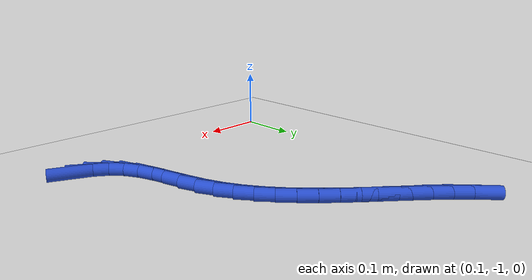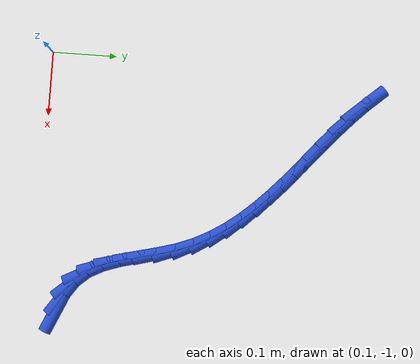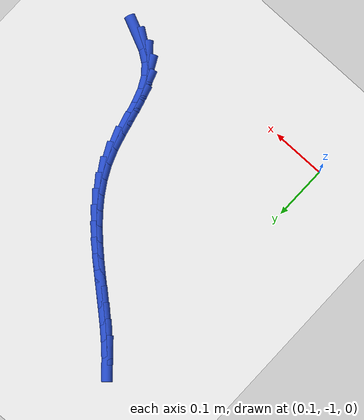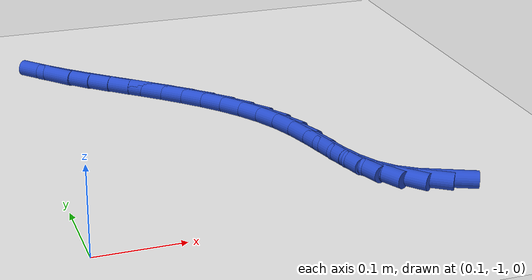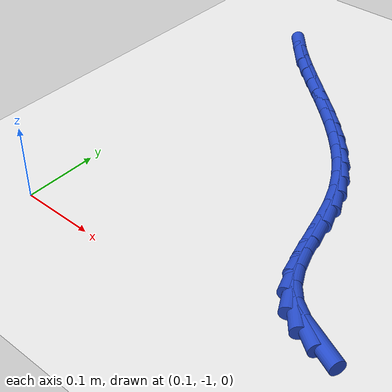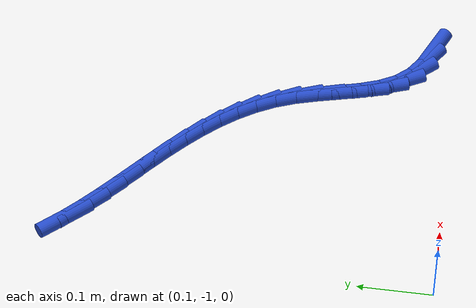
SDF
<sdf version="1.6">
 <world name="default">
  <model name="ground_plane">
   <static>1</static>
   <link name="link">
    <collision name="collision">
     <geometry><plane><normal>0 0 1</normal><size>100 100</size></plane></geometry>
     <surface><friction><ode><mu>100</mu><mu2>50</mu2></ode></friction></surface>
    </collision>
    <visual name="visual">
     <cast_shadows>0</cast_shadows>
     <geometry><plane><normal>0 0 1</normal><size>100 100</size></plane></geometry>
     <material>
      <script><uri>file://media/materials/scripts/gazebo.material</uri><name>Gazebo/WhiteGlow</name></script>
     </material>
    </visual>
   </link>
  </model>
  <model name="line">
   <link name="link_220">
    <pose>0.49903207739644273 -0.9618420998697418 0.01 0 1.57 -0.417349003114497</pose>
    <collision name="collision">
     <geometry><cylinder><radius>0.01</radius><length>0.08</length></cylinder></geometry>
    </collision>
    <visual name="visual">
     <material>
      <script><name>Gazebo/Blue</name><uri>file://media/materials/scripts/gazebo.material</uri></script>
     </material>
     <geometry><cylinder><radius>0.01</radius><length>0.08</length></cylinder></geometry>
    </visual>
   </link>
   <link name="link_221">
    <pose>0.47526597447201724 -0.9513042901302085 0.01 0 1.57 -0.6047112266988052</pose>
    <collision name="collision">
     <geometry><cylinder><radius>0.01</radius><length>0.08</length></cylinder></geometry>
    </collision>
    <visual name="visual">
     <material>
      <script><name>Gazebo/Blue</name><uri>file://media/materials/scripts/gazebo.material</uri></script>
     </material>
     <geometry><cylinder><radius>0.01</radius><length>0.08</length></cylinder></geometry>
    </visual>
   </link>
   <link name="link_222">
    <pose>0.4549799897783672 -0.9372851429496275 0.01 0 1.57 -0.8515704493078079</pose>
    <collision name="collision">
     <geometry><cylinder><radius>0.01</radius><length>0.08</length></cylinder></geometry>
    </collision>
    <visual name="visual">
     <material>
      <script><name>Gazebo/Blue</name><uri>file://media/materials/scripts/gazebo.material</uri></script>
     </material>
     <geometry><cylinder><radius>0.01</radius><length>0.08</length></cylinder></geometry>
    </visual>
   </link>
   <link name="link_223">
    <pose>0.4388586470993198 -0.9188754625256302 0.01 0 1.57 -1.0882365063068438</pose>
    <collision name="collision">
     <geometry><cylinder><radius>0.01</radius><length>0.08</length></cylinder></geometry>
    </collision>
    <visual name="visual">
     <material>
      <script><name>Gazebo/Blue</name><uri>file://media/materials/scripts/gazebo.material</uri></script>
     </material>
     <geometry><cylinder><radius>0.01</radius><length>0.08</length></cylinder></geometry>
    </visual>
   </link>
   <link name="link_224">
    <pose>0.42685317289384395 -0.8959585149349806 0.01 0 1.57 -1.2375458166080213</pose>
    <collision name="collision">
     <geometry><cylinder><radius>0.01</radius><length>0.08</length></cylinder></geometry>
    </collision>
    <visual name="visual">
     <material>
      <script><name>Gazebo/Blue</name><uri>file://media/materials/scripts/gazebo.material</uri></script>
     </material>
     <geometry><cylinder><radius>0.01</radius><length>0.08</length></cylinder></geometry>
    </visual>
   </link>
   <link name="link_225">
    <pose>0.41775386713960655 -0.8696721596502214 0.01 0 1.57 -1.3124815007485768</pose>
    <collision name="collision">
     <geometry><cylinder><radius>0.01</radius><length>0.08</length></cylinder></geometry>
    </collision>
    <visual name="visual">
     <material>
      <script><name>Gazebo/Blue</name><uri>file://media/materials/scripts/gazebo.material</uri></script>
     </material>
     <geometry><cylinder><radius>0.01</radius><length>0.08</length></cylinder></geometry>
    </visual>
   </link>
   <link name="link_226">
    <pose>0.41024826814981546 -0.8412653089173873 0.01 0 1.57 -1.3288820270884938</pose>
    <collision name="collision">
     <geometry><cylinder><radius>0.01</radius><length>0.08</length></cylinder></geometry>
    </collision>
    <visual name="visual">
     <material>
      <script><name>Gazebo/Blue</name><uri>file://media/materials/scripts/gazebo.material</uri></script>
     </material>
     <geometry><cylinder><radius>0.01</radius><length>0.08</length></cylinder></geometry>
    </visual>
   </link>
   <link name="link_227">
    <pose>0.4030239142376789 -0.8119868749825135 0.01 0 1.57 -1.292557065380275</pose>
    <collision name="collision">
     <geometry><cylinder><radius>0.01</radius><length>0.08</length></cylinder></geometry>
    </collision>
    <visual name="visual">
     <material>
      <script><name>Gazebo/Blue</name><uri>file://media/materials/scripts/gazebo.material</uri></script>
     </material>
     <geometry><cylinder><radius>0.01</radius><length>0.08</length></cylinder></geometry>
    </visual>
   </link>
   <link name="link_228">
    <pose>0.39476834371640457 -0.783085770091635 0.01 0 1.57 -1.2037793721290597</pose>
    <collision name="collision">
     <geometry><cylinder><radius>0.01</radius><length>0.08</length></cylinder></geometry>
    </collision>
    <visual name="visual">
     <material>
      <script><name>Gazebo/Blue</name><uri>file://media/materials/scripts/gazebo.material</uri></script>
     </material>
     <geometry><cylinder><radius>0.01</radius><length>0.08</length></cylinder></geometry>
    </visual>
   </link>
   <link name="link_229">
    <pose>0.38425348857347574 -0.7557343408988795 0.01 0 1.57 -1.0973382427252356</pose>
    <collision name="collision">
     <geometry><cylinder><radius>0.01</radius><length>0.08</length></cylinder></geometry>
    </collision>
    <visual name="visual">
     <material>
      <script><name>Gazebo/Blue</name><uri>file://media/materials/scripts/gazebo.material</uri></script>
     </material>
     <geometry><cylinder><radius>0.01</radius><length>0.08</length></cylinder></geometry>
    </visual>
   </link>
   <link name="link_230">
    <pose>0.3711960996741475 -0.73024775350258 0.01 0 1.57 -1.0005910637533086</pose>
    <collision name="collision">
     <geometry><cylinder><radius>0.01</radius><length>0.08</length></cylinder></geometry>
    </collision>
    <visual name="visual">
     <material>
      <script><name>Gazebo/Blue</name><uri>file://media/materials/scripts/gazebo.material</uri></script>
     </material>
     <geometry><cylinder><radius>0.01</radius><length>0.08</length></cylinder></geometry>
    </visual>
   </link>
   <link name="link_231">
    <pose>0.3559057022536648 -0.7064033834510647 0.01 0 1.57 -0.9165442266850433</pose>
    <collision name="collision">
     <geometry><cylinder><radius>0.01</radius><length>0.08</length></cylinder></geometry>
    </collision>
    <visual name="visual">
     <material>
      <script><name>Gazebo/Blue</name><uri>file://media/materials/scripts/gazebo.material</uri></script>
     </material>
     <geometry><cylinder><radius>0.01</radius><length>0.08</length></cylinder></geometry>
    </visual>
   </link>
   <link name="link_232">
    <pose>0.3387009736154229 -0.6839703031405463 0.01 0 1.57 -0.8465489368811758</pose>
    <collision name="collision">
     <geometry><cylinder><radius>0.01</radius><length>0.08</length></cylinder></geometry>
    </collision>
    <visual name="visual">
     <material>
      <script><name>Gazebo/Blue</name><uri>file://media/materials/scripts/gazebo.material</uri></script>
     </material>
     <geometry><cylinder><radius>0.01</radius><length>0.08</length></cylinder></geometry>
    </visual>
   </link>
   <link name="link_233">
    <pose>0.3199005910628163 -0.6627175849672383 0.01 0 1.57 -0.7909929757463305</pose>
    <collision name="collision">
     <geometry><cylinder><radius>0.01</radius><length>0.08</length></cylinder></geometry>
    </collision>
    <visual name="visual">
     <material>
      <script><name>Gazebo/Blue</name><uri>file://media/materials/scripts/gazebo.material</uri></script>
     </material>
     <geometry><cylinder><radius>0.01</radius><length>0.08</length></cylinder></geometry>
    </visual>
   </link>
   <link name="link_234">
    <pose>0.29982323189924054 -0.6424143013273547 0.01 0 1.57 -0.7496953151739179</pose>
    <collision name="collision">
     <geometry><cylinder><radius>0.01</radius><length>0.08</length></cylinder></geometry>
    </collision>
    <visual name="visual">
     <material>
      <script><name>Gazebo/Blue</name><uri>file://media/materials/scripts/gazebo.material</uri></script>
     </material>
     <geometry><cylinder><radius>0.01</radius><length>0.08</length></cylinder></geometry>
    </visual>
   </link>
   <link name="link_235">
    <pose>0.27878757342809024 -0.6228295246171082 0.01 0 1.57 -0.722251266607964</pose>
    <collision name="collision">
     <geometry><cylinder><radius>0.01</radius><length>0.08</length></cylinder></geometry>
    </collision>
    <visual name="visual">
     <material>
      <script><name>Gazebo/Blue</name><uri>file://media/materials/scripts/gazebo.material</uri></script>
     </material>
     <geometry><cylinder><radius>0.01</radius><length>0.08</length></cylinder></geometry>
    </visual>
   </link>
   <link name="link_236">
    <pose>0.25711229295275984 -0.6037323272327118 0.01 0 1.57 -0.7082759893029573</pose>
    <collision name="collision">
     <geometry><cylinder><radius>0.01</radius><length>0.08</length></cylinder></geometry>
    </collision>
    <visual name="visual">
     <material>
      <script><name>Gazebo/Blue</name><uri>file://media/materials/scripts/gazebo.material</uri></script>
     </material>
     <geometry><cylinder><radius>0.01</radius><length>0.08</length></cylinder></geometry>
    </visual>
   </link>
   <link name="link_237">
    <pose>0.2351160677766456 -0.5848917815703798 0.01 0 1.57 -0.7075501095524318</pose>
    <collision name="collision">
     <geometry><cylinder><radius>0.01</radius><length>0.08</length></cylinder></geometry>
    </collision>
    <visual name="visual">
     <material>
      <script><name>Gazebo/Blue</name><uri>file://media/materials/scripts/gazebo.material</uri></script>
     </material>
     <geometry><cylinder><radius>0.01</radius><length>0.08</length></cylinder></geometry>
    </visual>
   </link>
   <link name="link_238">
    <pose>0.21311757520314178 -0.5660769600263252 0.01 0 1.57 -0.7200877469781264</pose>
    <collision name="collision">
     <geometry><cylinder><radius>0.01</radius><length>0.08</length></cylinder></geometry>
    </collision>
    <visual name="visual">
     <material>
      <script><name>Gazebo/Blue</name><uri>file://media/materials/scripts/gazebo.material</uri></script>
     </material>
     <geometry><cylinder><radius>0.01</radius><length>0.08</length></cylinder></geometry>
    </visual>
   </link>
   <link name="link_239">
    <pose>0.19143549253564351 -0.5470569349967617 0.01 0 1.57 -0.7461414146442678</pose>
    <collision name="collision">
     <geometry><cylinder><radius>0.01</radius><length>0.08</length></cylinder></geometry>
    </collision>
    <visual name="visual">
     <material>
      <script><name>Gazebo/Blue</name><uri>file://media/materials/scripts/gazebo.material</uri></script>
     </material>
     <geometry><cylinder><radius>0.01</radius><length>0.08</length></cylinder></geometry>
    </visual>
   </link>
   <link name="link_240">
    <pose>0.17038849707754564 -0.5276007788779019 0.01 0 1.57 -0.7861437255802713</pose>
    <collision name="collision">
     <geometry><cylinder><radius>0.01</radius><length>0.08</length></cylinder></geometry>
    </collision>
    <visual name="visual">
     <material>
      <script><name>Gazebo/Blue</name><uri>file://media/materials/scripts/gazebo.material</uri></script>
     </material>
     <geometry><cylinder><radius>0.01</radius><length>0.08</length></cylinder></geometry>
    </visual>
   </link>
   <link name="link_241">
    <pose>0.1502952661322432 -0.5074775640659597 0.01 0 1.57 -0.84057057903249</pose>
    <collision name="collision">
     <geometry><cylinder><radius>0.01</radius><length>0.08</length></cylinder></geometry>
    </collision>
    <visual name="visual">
     <material>
      <script><name>Gazebo/Blue</name><uri>file://media/materials/scripts/gazebo.material</uri></script>
     </material>
     <geometry><cylinder><radius>0.01</radius><length>0.08</length></cylinder></geometry>
    </visual>
   </link>
  </model>
 </world>
</sdf>
